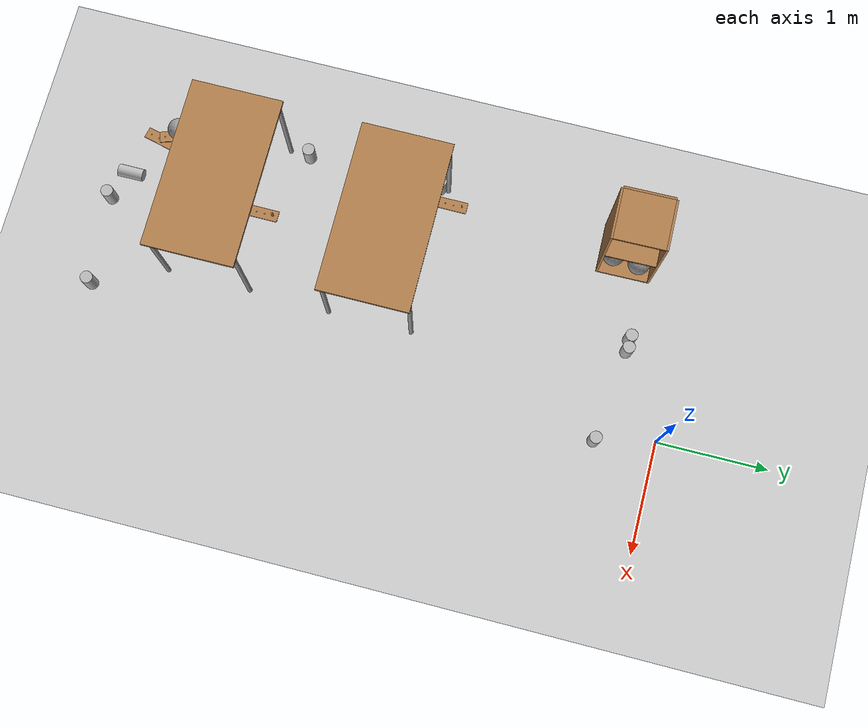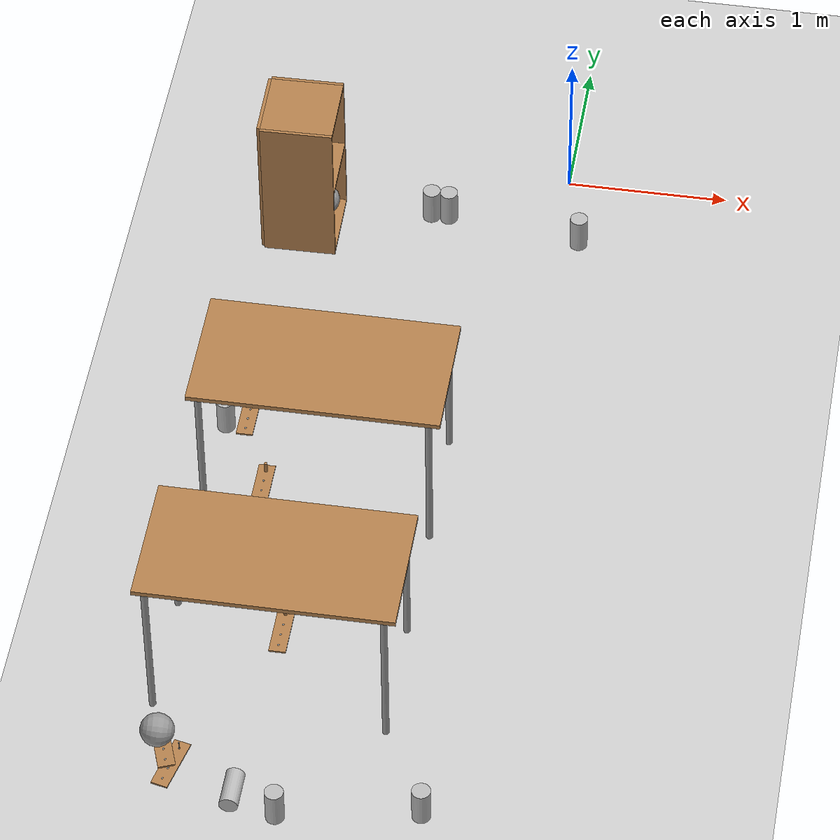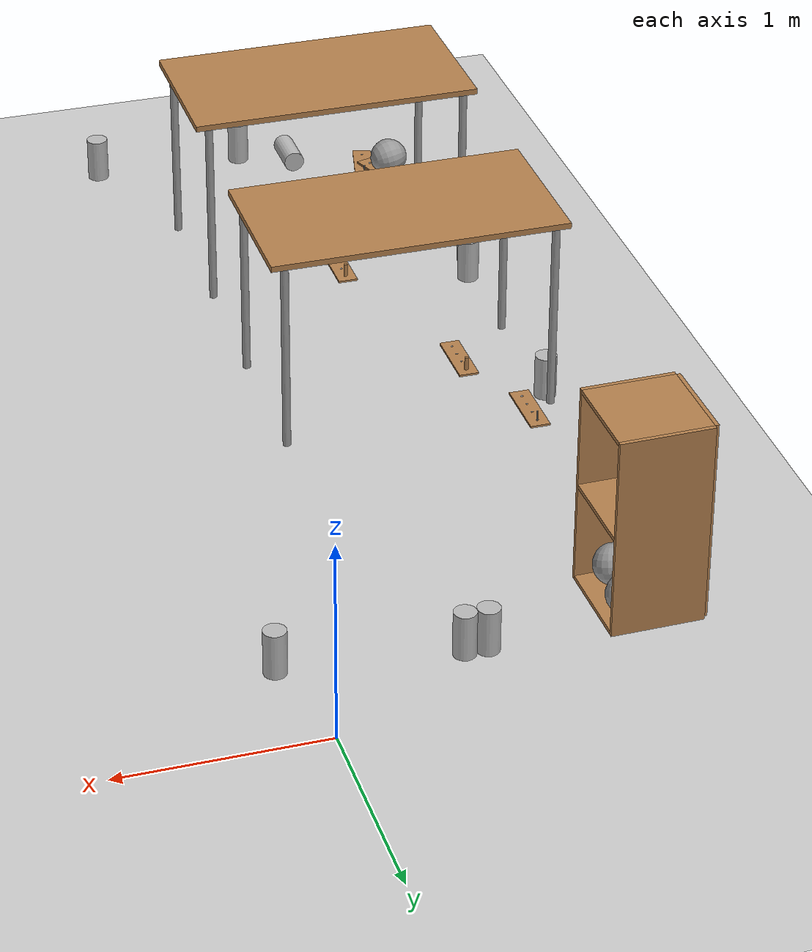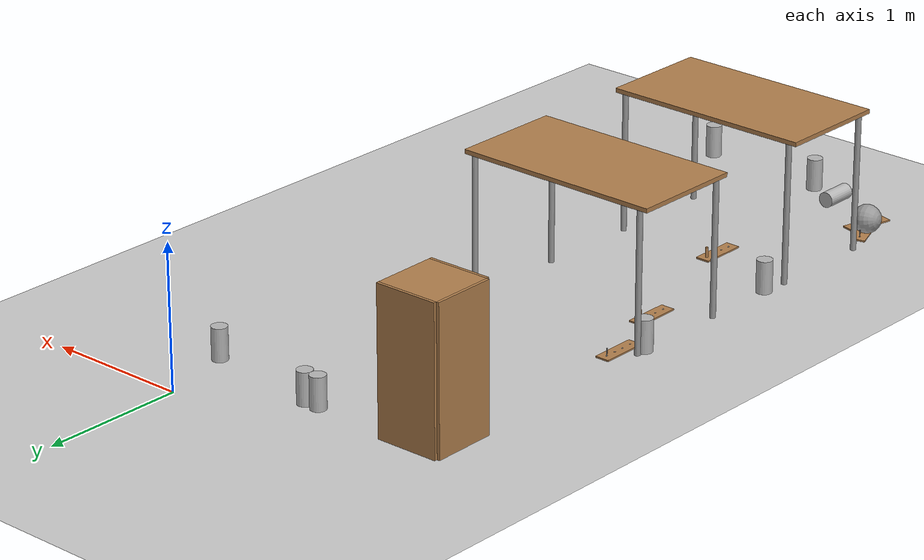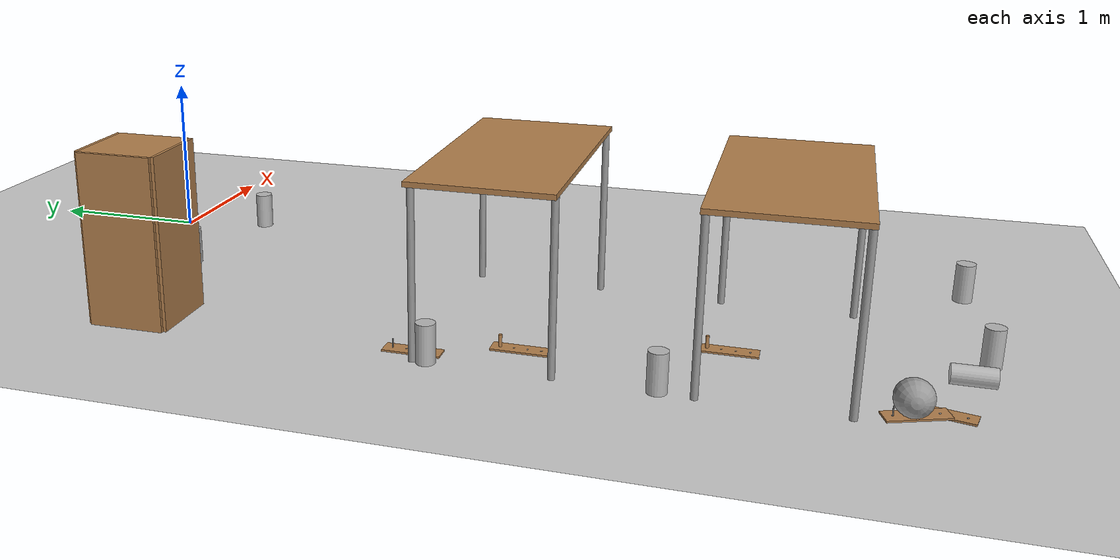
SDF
<sdf version="1.6">
 <world name="default">
  <model name="ground_plane">
   <static>1</static>
   <link name="link">
    <collision name="collision">
     <geometry><plane><normal>0 0 1</normal><size>100 100</size></plane></geometry>
     <surface><friction><ode><mu>100</mu><mu2>50</mu2></ode></friction></surface>
    </collision>
    <visual name="visual">
     <cast_shadows>0</cast_shadows>
     <geometry><plane><normal>0 0 1</normal><size>100 100</size></plane></geometry>
     <material>
      <script><uri>file://media/materials/scripts/gazebo.material</uri><name>Gazebo/Grey</name></script>
     </material>
    </visual>
   </link>
  </model>
  <model name="table">
   <static>1</static>
   <link name="link">
    <collision name="surface">
     <pose>0 0 1 0 -0 0</pose>
     <geometry><box><size>1.5 0.8 0.03</size></box></geometry>
     <surface><friction><ode><mu>0.6</mu><mu2>0.6</mu2></ode></friction></surface>
    </collision>
    <visual name="visual1">
     <pose>0 0 1 0 -0 0</pose>
     <geometry><box><size>1.5 0.8 0.03</size></box></geometry>
     <material>
      <script><uri>file://media/materials/scripts/gazebo.material</uri><name>Gazebo/Wood</name></script>
     </material>
    </visual>
    <collision name="front_left_leg">
     <pose>0.68 0.38 0.5 0 -0 0</pose>
     <geometry><cylinder><radius>0.02</radius><length>1</length></cylinder></geometry>
    </collision>
    <visual name="front_left_leg">
     <pose>0.68 0.38 0.5 0 -0 0</pose>
     <geometry><cylinder><radius>0.02</radius><length>1</length></cylinder></geometry>
     <material>
      <script><uri>file://media/materials/scripts/gazebo.material</uri><name>Gazebo/Grey</name></script>
     </material>
    </visual>
    <collision name="front_right_leg">
     <pose>0.68 -0.38 0.5 0 -0 0</pose>
     <geometry><cylinder><radius>0.02</radius><length>1</length></cylinder></geometry>
    </collision>
    <visual name="front_right_leg">
     <pose>0.68 -0.38 0.5 0 -0 0</pose>
     <geometry><cylinder><radius>0.02</radius><length>1</length></cylinder></geometry>
     <material>
      <script><uri>file://media/materials/scripts/gazebo.material</uri><name>Gazebo/Grey</name></script>
     </material>
    </visual>
    <collision name="back_right_leg">
     <pose>-0.68 -0.38 0.5 0 -0 0</pose>
     <geometry><cylinder><radius>0.02</radius><length>1</length></cylinder></geometry>
    </collision>
    <visual name="back_right_leg">
     <pose>-0.68 -0.38 0.5 0 -0 0</pose>
     <geometry><cylinder><radius>0.02</radius><length>1</length></cylinder></geometry>
     <material>
      <script><uri>file://media/materials/scripts/gazebo.material</uri><name>Gazebo/Grey</name></script>
     </material>
    </visual>
    <collision name="back_left_leg">
     <pose>-0.68 0.38 0.5 0 -0 0</pose>
     <geometry><cylinder><radius>0.02</radius><length>1</length></cylinder></geometry>
    </collision>
    <visual name="back_left_leg">
     <pose>-0.68 0.38 0.5 0 -0 0</pose>
     <geometry><cylinder><radius>0.02</radius><length>1</length></cylinder></geometry>
     <material>
      <script><uri>file://media/materials/scripts/gazebo.material</uri><name>Gazebo/Grey</name></script>
     </material>
    </visual>
   </link>
   <pose>-1.11658 -4.18409 0 0 -0 0</pose>
  </model>
  <model name="table_0">
   <static>1</static>
   <link name="link">
    <collision name="surface">
     <pose>0 0 1 0 -0 0</pose>
     <geometry><box><size>1.5 0.8 0.03</size></box></geometry>
     <surface><friction><ode><mu>0.6</mu><mu2>0.6</mu2></ode></friction></surface>
    </collision>
    <visual name="visual1">
     <pose>0 0 1 0 -0 0</pose>
     <geometry><box><size>1.5 0.8 0.03</size></box></geometry>
     <material>
      <script><uri>file://media/materials/scripts/gazebo.material</uri><name>Gazebo/Wood</name></script>
     </material>
    </visual>
    <collision name="front_left_leg">
     <pose>0.68 0.38 0.5 0 -0 0</pose>
     <geometry><cylinder><radius>0.02</radius><length>1</length></cylinder></geometry>
    </collision>
    <visual name="front_left_leg">
     <pose>0.68 0.38 0.5 0 -0 0</pose>
     <geometry><cylinder><radius>0.02</radius><length>1</length></cylinder></geometry>
     <material>
      <script><uri>file://media/materials/scripts/gazebo.material</uri><name>Gazebo/Grey</name></script>
     </material>
    </visual>
    <collision name="front_right_leg">
     <pose>0.68 -0.38 0.5 0 -0 0</pose>
     <geometry><cylinder><radius>0.02</radius><length>1</length></cylinder></geometry>
    </collision>
    <visual name="front_right_leg">
     <pose>0.68 -0.38 0.5 0 -0 0</pose>
     <geometry><cylinder><radius>0.02</radius><length>1</length></cylinder></geometry>
     <material>
      <script><uri>file://media/materials/scripts/gazebo.material</uri><name>Gazebo/Grey</name></script>
     </material>
    </visual>
    <collision name="back_right_leg">
     <pose>-0.68 -0.38 0.5 0 -0 0</pose>
     <geometry><cylinder><radius>0.02</radius><length>1</length></cylinder></geometry>
    </collision>
    <visual name="back_right_leg">
     <pose>-0.68 -0.38 0.5 0 -0 0</pose>
     <geometry><cylinder><radius>0.02</radius><length>1</length></cylinder></geometry>
     <material>
      <script><uri>file://media/materials/scripts/gazebo.material</uri><name>Gazebo/Grey</name></script>
     </material>
    </visual>
    <collision name="back_left_leg">
     <pose>-0.68 0.38 0.5 0 -0 0</pose>
     <geometry><cylinder><radius>0.02</radius><length>1</length></cylinder></geometry>
    </collision>
    <visual name="back_left_leg">
     <pose>-0.68 0.38 0.5 0 -0 0</pose>
     <geometry><cylinder><radius>0.02</radius><length>1</length></cylinder></geometry>
     <material>
      <script><uri>file://media/materials/scripts/gazebo.material</uri><name>Gazebo/Grey</name></script>
     </material>
    </visual>
   </link>
   <pose>-1.10075 -2.69015 0 0 -0 0</pose>
  </model>
  <model name="cabinet">
   <static>1</static>
   <link name="cabinet_bottom_plate">
    <inertial>
     <pose>0 0 -1 0 -0 0</pose>
     <inertia><ixx>2.05</ixx><ixy>0</ixy><ixz>0</ixz><iyy>2.05</iyy><iyz>0</iyz><izz>2.05</izz></inertia>
     <mass>25</mass>
    </inertial>
    <collision name="cabinet_bottom_plate_geom">
     <pose>0 0 0.01 0 -0 0</pose>
     <geometry><box><size>0.45 0.45 0.02</size></box></geometry>
    </collision>
    <visual name="cabinet_bottom_plate_geom_visual">
     <pose>0 0 0.01 0 -0 0</pose>
     <geometry><box><size>0.45 0.45 0.02</size></box></geometry>
     <material>
      <script><uri>file://media/materials/scripts/gazebo.material</uri><name>Gazebo/Wood</name></script>
     </material>
    </visual>
    <collision name="cabinet_bottom_plate_geom_cabinet_back_plate">
     <pose>0.235 0 0.51 0 -0 0</pose>
     <geometry><box><size>0.02 0.45 1.02</size></box></geometry>
    </collision>
    <visual name="cabinet_bottom_plate_geom_cabinet_back_plate_visual">
     <pose>0.235 0 0.51 0 -0 0</pose>
     <geometry><box><size>0.02 0.45 1.02</size></box></geometry>
     <material>
      <script><uri>file://media/materials/scripts/gazebo.material</uri><name>Gazebo/Wood</name></script>
     </material>
    </visual>
    <collision name="cabinet_bottom_plate_geom_cabinet_left_plate">
     <pose>0 0.235 0.51 0 -0 0</pose>
     <geometry><box><size>0.45 0.02 1.02</size></box></geometry>
    </collision>
    <visual name="cabinet_bottom_plate_geom_cabinet_left_plate_visual">
     <pose>0 0.235 0.51 0 -0 0</pose>
     <geometry><box><size>0.45 0.02 1.02</size></box></geometry>
     <material>
      <script><uri>file://media/materials/scripts/gazebo.material</uri><name>Gazebo/Wood</name></script>
     </material>
    </visual>
    <collision name="cabinet_bottom_plate_geom_cabinet_middle_plate">
     <pose>0 0 0.51 0 -0 0</pose>
     <geometry><box><size>0.45 0.45 0.02</size></box></geometry>
    </collision>
    <visual name="cabinet_bottom_plate_geom_cabinet_middle_plate_visual">
     <pose>0 0 0.51 0 -0 0</pose>
     <geometry><box><size>0.45 0.45 0.02</size></box></geometry>
     <material>
      <script><uri>file://media/materials/scripts/gazebo.material</uri><name>Gazebo/Wood</name></script>
     </material>
    </visual>
    <collision name="cabinet_bottom_plate_geom_cabinet_right_plate">
     <pose>0 -0.235 0.51 0 -0 0</pose>
     <geometry><box><size>0.45 0.02 1.02</size></box></geometry>
    </collision>
    <visual name="cabinet_bottom_plate_geom_cabinet_right_plate_visual">
     <pose>0 -0.235 0.51 0 -0 0</pose>
     <geometry><box><size>0.45 0.02 1.02</size></box></geometry>
     <material>
      <script><uri>file://media/materials/scripts/gazebo.material</uri><name>Gazebo/Wood</name></script>
     </material>
    </visual>
    <collision name="cabinet_bottom_plate_geom_cabinet_top_plate">
     <pose>0 0 1.01 0 -0 0</pose>
     <geometry><box><size>0.45 0.45 0.02</size></box></geometry>
    </collision>
    <visual name="cabinet_bottom_plate_geom_cabinet_top_plate_visual">
     <pose>0 0 1.01 0 -0 0</pose>
     <geometry><box><size>0.45 0.45 0.02</size></box></geometry>
     <material>
      <script><uri>file://media/materials/scripts/gazebo.material</uri><name>Gazebo/Wood</name></script>
     </material>
    </visual>
   </link>
   <pose>-1.60346 -0.606793 0 0 0 -3.12567</pose>
  </model>
  <model name="beer">
   <link name="link">
    <pose>0 0 0.115 0 -0 0</pose>
    <inertial>
     <mass>0.39</mass>
     <inertia><ixx>0.00058</ixx><ixy>0</ixy><ixz>0</ixz><iyy>0.00058</iyy><iyz>0</iyz><izz>0.00019</izz></inertia>
    </inertial>
    <collision name="collision">
     <geometry><cylinder><radius>0.055</radius><length>0.23</length></cylinder></geometry>
    </collision>
    <visual name="visual">
     <geometry><cylinder><radius>0.055</radius><length>0.23</length></cylinder></geometry>
     <material>
      <script>
       <uri>model://beer/materials/scripts</uri>
       <uri>model://beer/materials/textures</uri>
       <name>Beer/Diffuse</name>
      </script>
     </material>
    </visual>
   </link>
   <pose>0.127018 -0.530351 -7e-06 -1e-06 -0 -0.00014</pose>
  </model>
  <model name="beer_0">
   <link name="link">
    <pose>0 0 0.115 0 -0 0</pose>
    <inertial>
     <mass>0.39</mass>
     <inertia><ixx>0.00058</ixx><ixy>0</ixy><ixz>0</ixz><iyy>0.00058</iyy><iyz>0</iyz><izz>0.00019</izz></inertia>
    </inertial>
    <collision name="collision">
     <geometry><cylinder><radius>0.055</radius><length>0.23</length></cylinder></geometry>
    </collision>
    <visual name="visual">
     <geometry><cylinder><radius>0.055</radius><length>0.23</length></cylinder></geometry>
     <material>
      <script>
       <uri>model://beer/materials/scripts</uri>
       <uri>model://beer/materials/textures</uri>
       <name>Beer/Diffuse</name>
      </script>
     </material>
    </visual>
   </link>
   <pose>-0.825052 -0.42424 -2e-06 1e-06 -0 0.056134</pose>
  </model>
  <model name="beer_1">
   <link name="link">
    <pose>0 0 0.115 0 -0 0</pose>
    <inertial>
     <mass>0.39</mass>
     <inertia><ixx>0.00058</ixx><ixy>0</ixy><ixz>0</ixz><iyy>0.00058</iyy><iyz>0</iyz><izz>0.00019</izz></inertia>
    </inertial>
    <collision name="collision">
     <geometry><cylinder><radius>0.055</radius><length>0.23</length></cylinder></geometry>
    </collision>
    <visual name="visual">
     <geometry><cylinder><radius>0.055</radius><length>0.23</length></cylinder></geometry>
     <material>
      <script>
       <uri>model://beer/materials/scripts</uri>
       <uri>model://beer/materials/textures</uri>
       <name>Beer/Diffuse</name>
      </script>
     </material>
    </visual>
   </link>
   <pose>-0.715047 -0.42423 -2e-06 1e-06 -0 0.162904</pose>
  </model>
  <model name="my_ball">
   <link name="link_0">
    <inertial>
     <mass>1</mass>
     <inertia><ixx>0.1</ixx><ixy>0</ixy><ixz>0</ixz><iyy>0.1</iyy><iyz>0</iyz><izz>0.1</izz></inertia>
    </inertial>
    <visual name="visual">
     <geometry><sphere><radius>0.1</radius></sphere></geometry>
     <material>
      <lighting>1</lighting>
      <script><uri>file://media/materials/scripts/gazebo.material</uri><name>Gazebo/Grey</name></script>
      <shader type="pixel"><normal_map>__default__</normal_map></shader>
      <ambient>1 1 1 1</ambient>
      <diffuse>1 1 1 1</diffuse>
      <specular>1 1 1 1</specular>
      <emissive>0 0 0 1</emissive>
     </material>
    </visual>
    <collision name="collision">
     <geometry><sphere><radius>0.1</radius></sphere></geometry>
     <surface>
      <friction>
       <ode><mu>1</mu><mu2>1</mu2><fdir1>0 0 0</fdir1><slip1>0</slip1><slip2>0</slip2></ode>
       <torsional>
        <coefficient>1</coefficient>
        <patch_radius>0</patch_radius>
        <surface_radius>0</surface_radius>
        <use_patch_radius>1</use_patch_radius>
        <ode><slip>0</slip></ode>
       </torsional>
      </friction>
      <bounce><restitution_coefficient>0</restitution_coefficient><threshold>1e+06</threshold></bounce>
      <contact>
       <collide_without_contact>0</collide_without_contact>
       <collide_without_contact_bitmask>1</collide_without_contact_bitmask>
       <collide_bitmask>1</collide_bitmask>
       <ode>
        <soft_cfm>0</soft_cfm>
        <soft_erp>0.2</soft_erp>
        <kp>1e+13</kp>
        <kd>1</kd>
        <max_vel>0.01</max_vel>
        <min_depth>0</min_depth>
       </ode>
       <bullet>
        <split_impulse>1</split_impulse>
        <split_impulse_penetration_threshold>-0.01</split_impulse_penetration_threshold>
        <soft_cfm>0</soft_cfm>
        <soft_erp>0.2</soft_erp>
        <kp>1e+13</kp>
        <kd>1</kd>
       </bullet>
      </contact>
     </surface>
    </collision>
   </link>
   <static>0</static>
   <pose>-1.50345 -0.493286 0.12 0.461158 0.001202 0.001684</pose>
  </model>
  <model name="my_ball_0">
   <link name="link_0">
    <inertial>
     <mass>1</mass>
     <inertia><ixx>0.1</ixx><ixy>0</ixy><ixz>0</ixz><iyy>0.1</iyy><iyz>0</iyz><izz>0.1</izz></inertia>
    </inertial>
    <visual name="visual">
     <geometry><sphere><radius>0.1</radius></sphere></geometry>
     <material>
      <lighting>1</lighting>
      <script><uri>file://media/materials/scripts/gazebo.material</uri><name>Gazebo/Grey</name></script>
      <shader type="pixel"><normal_map>__default__</normal_map></shader>
      <ambient>1 1 1 1</ambient>
      <diffuse>1 1 1 1</diffuse>
      <specular>1 1 1 1</specular>
      <emissive>0 0 0 1</emissive>
     </material>
    </visual>
    <collision name="collision">
     <geometry><sphere><radius>0.1</radius></sphere></geometry>
     <surface>
      <friction>
       <ode><mu>1</mu><mu2>1</mu2><fdir1>0 0 0</fdir1><slip1>0</slip1><slip2>0</slip2></ode>
       <torsional>
        <coefficient>1</coefficient>
        <patch_radius>0</patch_radius>
        <surface_radius>0</surface_radius>
        <use_patch_radius>1</use_patch_radius>
        <ode><slip>0</slip></ode>
       </torsional>
      </friction>
      <bounce><restitution_coefficient>0</restitution_coefficient><threshold>1e+06</threshold></bounce>
      <contact>
       <collide_without_contact>0</collide_without_contact>
       <collide_without_contact_bitmask>1</collide_without_contact_bitmask>
       <collide_bitmask>1</collide_bitmask>
       <ode>
        <soft_cfm>0</soft_cfm>
        <soft_erp>0.2</soft_erp>
        <kp>1e+13</kp>
        <kd>1</kd>
        <max_vel>0.01</max_vel>
        <min_depth>0</min_depth>
       </ode>
       <bullet>
        <split_impulse>1</split_impulse>
        <split_impulse_penetration_threshold>-0.01</split_impulse_penetration_threshold>
        <soft_cfm>0</soft_cfm>
        <soft_erp>0.2</soft_erp>
        <kp>1e+13</kp>
        <kd>1</kd>
       </bullet>
      </contact>
     </surface>
    </collision>
   </link>
   <static>0</static>
   <pose>-1.52826 -0.730598 0.12 0.43637 -0.058735 0.008729</pose>
  </model>
  <model name="beer_2">
   <link name="link">
    <pose>0 0 0.115 0 -0 0</pose>
    <inertial>
     <mass>0.39</mass>
     <inertia><ixx>0.00058</ixx><ixy>0</ixy><ixz>0</ixz><iyy>0.00058</iyy><iyz>0</iyz><izz>0.00019</izz></inertia>
    </inertial>
    <collision name="collision">
     <geometry><cylinder><radius>0.055</radius><length>0.23</length></cylinder></geometry>
    </collision>
    <visual name="visual">
     <geometry><cylinder><radius>0.055</radius><length>0.23</length></cylinder></geometry>
     <material>
      <script>
       <uri>model://beer/materials/scripts</uri>
       <uri>model://beer/materials/textures</uri>
       <name>Beer/Diffuse</name>
      </script>
     </material>
    </visual>
   </link>
   <pose>-1.77787 -2.38531 -8e-06 -7e-06 2e-06 -0.030361</pose>
  </model>
  <model name="metal_peg_board">
   <link name="wooden_board::base">
    <pose>0 0 0.00523 0 -0 0</pose>
    <inertial>
     <mass>0.2765</mass>
     <inertia>
      <ixx>0.0025148</ixx>
      <ixy>0</ixy>
      <ixz>0</ixz>
      <iyy>0.00024037</iyy>
      <iyz>0</iyz>
      <izz>0.00275013</izz>
     </inertia>
    </inertial>
    <collision name="collision">
     <geometry><box><size>0.1016 0.3302 0.01046</size></box></geometry>
     <surface>
      <contact>
       <poissons_ratio>0.347</poissons_ratio>
       <elastic_modulus>8.8e+09</elastic_modulus>
       <ode><kp>100000</kp><kd>100</kd><max_vel>100</max_vel><min_depth>0.001</min_depth></ode>
      </contact>
      <friction>
       <torsional>
        <coefficient>1</coefficient>
        <use_patch_radius>0</use_patch_radius>
        <surface_radius>0.01</surface_radius>
       </torsional>
      </friction>
     </surface>
    </collision>
    <visual name="visual">
     <geometry><box><size>0.1016 0.3302 0.01046</size></box></geometry>
     <material>
      <script><uri>file://media/materials/scripts/gazebo.material</uri><name>Gazebo/Wood</name></script>
     </material>
    </visual>
    <visual name="tee_nut_1">
     <pose>0 -0.116 0 0 -0 0</pose>
     <geometry><cylinder><radius>0.00635</radius><length>0.0105646</length></cylinder></geometry>
     <material>
      <script><uri>file://media/materials/scripts/gazebo.material</uri><name>Gazebo/Grey</name></script>
     </material>
    </visual>
    <visual name="tee_nut_2">
     <pose>0 -0.038 0 0 -0 0</pose>
     <geometry><cylinder><radius>0.00635</radius><length>0.0105646</length></cylinder></geometry>
     <material>
      <script><uri>file://media/materials/scripts/gazebo.material</uri><name>Gazebo/Grey</name></script>
     </material>
    </visual>
    <visual name="tee_nut_3">
     <pose>0 0.038 0 0 -0 0</pose>
     <geometry><cylinder><radius>0.00635</radius><length>0.0105646</length></cylinder></geometry>
     <material>
      <script><uri>file://media/materials/scripts/gazebo.material</uri><name>Gazebo/Grey</name></script>
     </material>
    </visual>
    <visual name="tee_nut_4">
     <pose>0 0.116 0 0 -0 0</pose>
     <geometry><cylinder><radius>0.00635</radius><length>0.0105646</length></cylinder></geometry>
     <material>
      <script><uri>file://media/materials/scripts/gazebo.material</uri><name>Gazebo/Grey</name></script>
     </material>
    </visual>
   </link>
   <link name="peg::link">
    <pose>0 0.116 0.031 0 -0 0</pose>
    <inertial>
     <mass>0.0121</mass>
     <inertia>
      <ixx>3.90898e-06</ixx>
      <ixy>0</ixy>
      <ixz>0</ixz>
      <iyy>3.90898e-06</iyy>
      <iyz>0</iyz>
      <izz>6.58845e-08</izz>
     </inertia>
    </inertial>
    <collision name="collision">
     <geometry><cylinder><radius>0.0033</radius><length>0.062</length></cylinder></geometry>
     <surface>
      <contact>
       <poissons_ratio>0.305</poissons_ratio>
       <elastic_modulus>2e+11</elastic_modulus>
       <ode><kp>100000</kp><kd>100</kd><max_vel>100</max_vel><min_depth>0.001</min_depth></ode>
      </contact>
      <friction>
       <torsional>
        <coefficient>1</coefficient>
        <use_patch_radius>0</use_patch_radius>
        <surface_radius>0.01</surface_radius>
       </torsional>
      </friction>
     </surface>
    </collision>
    <visual name="visual">
     <geometry><cylinder><radius>0.0033</radius><length>0.062</length></cylinder></geometry>
     <material>
      <script><uri>file://media/materials/scripts/gazebo.material</uri><name>Gazebo/Grey</name></script>
     </material>
    </visual>
   </link>
   <joint name="board_peg" type="revolute">
    <parent>wooden_board::base</parent>
    <child>peg::link</child>
    <axis>
     <xyz>0 0 1</xyz>
     <limit><upper>0</upper><lower>0</lower></limit>
     <use_parent_model_frame>0</use_parent_model_frame>
     <dynamics><spring_reference>0</spring_reference><spring_stiffness>0</spring_stiffness></dynamics>
    </axis>
   </joint>
   <pose>-1.65876 -2.27282 -0.001004 1e-05 -0 0</pose>
  </model>
  <model name="wooden_peg_board">
   <link name="wooden_board::base">
    <pose>0 0 0.00523 0 -0 0</pose>
    <inertial>
     <mass>0.2765</mass>
     <inertia>
      <ixx>0.0025148</ixx>
      <ixy>0</ixy>
      <ixz>0</ixz>
      <iyy>0.00024037</iyy>
      <iyz>0</iyz>
      <izz>0.00275013</izz>
     </inertia>
    </inertial>
    <collision name="collision">
     <geometry><box><size>0.1016 0.3302 0.01046</size></box></geometry>
     <surface>
      <contact>
       <poissons_ratio>0.347</poissons_ratio>
       <elastic_modulus>8.8e+09</elastic_modulus>
       <ode><kp>100000</kp><kd>100</kd><max_vel>100</max_vel><min_depth>0.001</min_depth></ode>
      </contact>
      <friction>
       <torsional>
        <coefficient>1</coefficient>
        <use_patch_radius>0</use_patch_radius>
        <surface_radius>0.01</surface_radius>
       </torsional>
      </friction>
     </surface>
    </collision>
    <visual name="visual">
     <geometry><box><size>0.1016 0.3302 0.01046</size></box></geometry>
     <material>
      <script><uri>file://media/materials/scripts/gazebo.material</uri><name>Gazebo/Wood</name></script>
     </material>
    </visual>
    <visual name="tee_nut_1">
     <pose>0 -0.116 0 0 -0 0</pose>
     <geometry><cylinder><radius>0.00635</radius><length>0.0105646</length></cylinder></geometry>
     <material>
      <script><uri>file://media/materials/scripts/gazebo.material</uri><name>Gazebo/Grey</name></script>
     </material>
    </visual>
    <visual name="tee_nut_2">
     <pose>0 -0.038 0 0 -0 0</pose>
     <geometry><cylinder><radius>0.00635</radius><length>0.0105646</length></cylinder></geometry>
     <material>
      <script><uri>file://media/materials/scripts/gazebo.material</uri><name>Gazebo/Grey</name></script>
     </material>
    </visual>
    <visual name="tee_nut_3">
     <pose>0 0.038 0 0 -0 0</pose>
     <geometry><cylinder><radius>0.00635</radius><length>0.0105646</length></cylinder></geometry>
     <material>
      <script><uri>file://media/materials/scripts/gazebo.material</uri><name>Gazebo/Grey</name></script>
     </material>
    </visual>
    <visual name="tee_nut_4">
     <pose>0 0.116 0 0 -0 0</pose>
     <geometry><cylinder><radius>0.00635</radius><length>0.0105646</length></cylinder></geometry>
     <material>
      <script><uri>file://media/materials/scripts/gazebo.material</uri><name>Gazebo/Grey</name></script>
     </material>
    </visual>
   </link>
   <link name="peg::link">
    <pose>0 0.116 0.04 0 -0 0</pose>
    <inertial>
     <mass>0.0175</mass>
     <inertia>
      <ixx>9.74923e-06</ixx>
      <ixy>0</ixy>
      <ixz>0</ixz>
      <iyy>9.74923e-06</iyy>
      <iyz>0</iyz>
      <izz>8.31797e-07</izz>
     </inertia>
    </inertial>
    <collision name="collision">
     <geometry><cylinder><radius>0.00975</radius><length>0.08</length></cylinder></geometry>
     <surface>
      <contact>
       <poissons_ratio>0.347</poissons_ratio>
       <elastic_modulus>8.8e+09</elastic_modulus>
       <ode><kp>100000</kp><kd>100</kd><max_vel>100</max_vel><min_depth>0.001</min_depth></ode>
      </contact>
      <friction>
       <torsional>
        <coefficient>1</coefficient>
        <use_patch_radius>0</use_patch_radius>
        <surface_radius>0.01</surface_radius>
       </torsional>
      </friction>
     </surface>
    </collision>
    <visual name="visual">
     <geometry><cylinder><radius>0.00975</radius><length>0.08</length></cylinder></geometry>
     <material>
      <script><uri>file://media/materials/scripts/gazebo.material</uri><name>Gazebo/Wood</name></script>
     </material>
    </visual>
   </link>
   <joint name="board_peg" type="revolute">
    <parent>wooden_board::base</parent>
    <child>peg::link</child>
    <axis>
     <xyz>0 0 1</xyz>
     <limit><upper>0</upper><lower>0</lower></limit>
     <use_parent_model_frame>0</use_parent_model_frame>
     <dynamics><spring_reference>0</spring_reference><spring_stiffness>0</spring_stiffness></dynamics>
    </axis>
   </joint>
   <pose>-1.47338 -2.83075 -0.001004 1.3e-05 -0 -1e-06</pose>
  </model>
  <model name="beer_3">
   <link name="link">
    <pose>0 0 0.115 0 -0 0</pose>
    <inertial>
     <mass>0.39</mass>
     <inertia><ixx>0.00058</ixx><ixy>0</ixy><ixz>0</ixz><iyy>0.00058</iyy><iyz>0</iyz><izz>0.00019</izz></inertia>
    </inertial>
    <collision name="collision">
     <geometry><cylinder><radius>0.055</radius><length>0.23</length></cylinder></geometry>
    </collision>
    <visual name="visual">
     <geometry><cylinder><radius>0.055</radius><length>0.23</length></cylinder></geometry>
     <material>
      <script>
       <uri>model://beer/materials/scripts</uri>
       <uri>model://beer/materials/textures</uri>
       <name>Beer/Diffuse</name>
      </script>
     </material>
    </visual>
   </link>
   <pose>-1.77652 -3.614 -7e-06 -1e-06 -0 -0.000112</pose>
  </model>
  <model name="wooden_peg_board_0">
   <link name="wooden_board::base">
    <pose>0 0 0.00523 0 -0 0</pose>
    <inertial>
     <mass>0.2765</mass>
     <inertia>
      <ixx>0.0025148</ixx>
      <ixy>0</ixy>
      <ixz>0</ixz>
      <iyy>0.00024037</iyy>
      <iyz>0</iyz>
      <izz>0.00275013</izz>
     </inertia>
    </inertial>
    <collision name="collision">
     <geometry><box><size>0.1016 0.3302 0.01046</size></box></geometry>
     <surface>
      <contact>
       <poissons_ratio>0.347</poissons_ratio>
       <elastic_modulus>8.8e+09</elastic_modulus>
       <ode><kp>100000</kp><kd>100</kd><max_vel>100</max_vel><min_depth>0.001</min_depth></ode>
      </contact>
      <friction>
       <torsional>
        <coefficient>1</coefficient>
        <use_patch_radius>0</use_patch_radius>
        <surface_radius>0.01</surface_radius>
       </torsional>
      </friction>
     </surface>
    </collision>
    <visual name="visual">
     <geometry><box><size>0.1016 0.3302 0.01046</size></box></geometry>
     <material>
      <script><uri>file://media/materials/scripts/gazebo.material</uri><name>Gazebo/Wood</name></script>
     </material>
    </visual>
    <visual name="tee_nut_1">
     <pose>0 -0.116 0 0 -0 0</pose>
     <geometry><cylinder><radius>0.00635</radius><length>0.0105646</length></cylinder></geometry>
     <material>
      <script><uri>file://media/materials/scripts/gazebo.material</uri><name>Gazebo/Grey</name></script>
     </material>
    </visual>
    <visual name="tee_nut_2">
     <pose>0 -0.038 0 0 -0 0</pose>
     <geometry><cylinder><radius>0.00635</radius><length>0.0105646</length></cylinder></geometry>
     <material>
      <script><uri>file://media/materials/scripts/gazebo.material</uri><name>Gazebo/Grey</name></script>
     </material>
    </visual>
    <visual name="tee_nut_3">
     <pose>0 0.038 0 0 -0 0</pose>
     <geometry><cylinder><radius>0.00635</radius><length>0.0105646</length></cylinder></geometry>
     <material>
      <script><uri>file://media/materials/scripts/gazebo.material</uri><name>Gazebo/Grey</name></script>
     </material>
    </visual>
    <visual name="tee_nut_4">
     <pose>0 0.116 0 0 -0 0</pose>
     <geometry><cylinder><radius>0.00635</radius><length>0.0105646</length></cylinder></geometry>
     <material>
      <script><uri>file://media/materials/scripts/gazebo.material</uri><name>Gazebo/Grey</name></script>
     </material>
    </visual>
   </link>
   <link name="peg::link">
    <pose>0 0.116 0.04 0 -0 0</pose>
    <inertial>
     <mass>0.0175</mass>
     <inertia>
      <ixx>9.74923e-06</ixx>
      <ixy>0</ixy>
      <ixz>0</ixz>
      <iyy>9.74923e-06</iyy>
      <iyz>0</iyz>
      <izz>8.31797e-07</izz>
     </inertia>
    </inertial>
    <collision name="collision">
     <geometry><cylinder><radius>0.00975</radius><length>0.08</length></cylinder></geometry>
     <surface>
      <contact>
       <poissons_ratio>0.347</poissons_ratio>
       <elastic_modulus>8.8e+09</elastic_modulus>
       <ode><kp>100000</kp><kd>100</kd><max_vel>100</max_vel><min_depth>0.001</min_depth></ode>
      </contact>
      <friction>
       <torsional>
        <coefficient>1</coefficient>
        <use_patch_radius>0</use_patch_radius>
        <surface_radius>0.01</surface_radius>
       </torsional>
      </friction>
     </surface>
    </collision>
    <visual name="visual">
     <geometry><cylinder><radius>0.00975</radius><length>0.08</length></cylinder></geometry>
     <material>
      <script><uri>file://media/materials/scripts/gazebo.material</uri><name>Gazebo/Wood</name></script>
     </material>
    </visual>
   </link>
   <joint name="board_peg" type="revolute">
    <parent>wooden_board::base</parent>
    <child>peg::link</child>
    <axis>
     <xyz>0 0 1</xyz>
     <limit><upper>0</upper><lower>0</lower></limit>
     <use_parent_model_frame>0</use_parent_model_frame>
     <dynamics><spring_reference>0</spring_reference><spring_stiffness>0</spring_stiffness></dynamics>
    </axis>
   </joint>
   <pose>-1.15736 -3.91513 -0.001005 1.8e-05 -9e-06 5.1e-05</pose>
  </model>
  <model name="beer_4">
   <link name="link">
    <pose>0 0 0.115 0 -0 0</pose>
    <inertial>
     <mass>0.39</mass>
     <inertia><ixx>0.00058</ixx><ixy>0</ixy><ixz>0</ixz><iyy>0.00058</iyy><iyz>0</iyz><izz>0.00019</izz></inertia>
    </inertial>
    <collision name="collision">
     <geometry><cylinder><radius>0.055</radius><length>0.23</length></cylinder></geometry>
    </collision>
    <visual name="visual">
     <geometry><cylinder><radius>0.055</radius><length>0.23</length></cylinder></geometry>
     <material>
      <script>
       <uri>model://beer/materials/scripts</uri>
       <uri>model://beer/materials/textures</uri>
       <name>Beer/Diffuse</name>
      </script>
     </material>
    </visual>
   </link>
   <pose>-1.2205 -5.03148 0.055 -1.57116 0.2619 3.1415</pose>
  </model>
  <model name="beer_5">
   <link name="link">
    <pose>0 0 0.115 0 -0 0</pose>
    <inertial>
     <mass>0.39</mass>
     <inertia><ixx>0.00058</ixx><ixy>0</ixy><ixz>0</ixz><iyy>0.00058</iyy><iyz>0</iyz><izz>0.00019</izz></inertia>
    </inertial>
    <collision name="collision">
     <geometry><cylinder><radius>0.055</radius><length>0.23</length></cylinder></geometry>
    </collision>
    <visual name="visual">
     <geometry><cylinder><radius>0.055</radius><length>0.23</length></cylinder></geometry>
     <material>
      <script>
       <uri>model://beer/materials/scripts</uri>
       <uri>model://beer/materials/textures</uri>
       <name>Beer/Diffuse</name>
      </script>
     </material>
    </visual>
   </link>
   <pose>-0.955251 -5.25699 -7e-06 0 -1e-06 -1.79864</pose>
  </model>
  <model name="metal_peg_board_0">
   <link name="wooden_board::base">
    <pose>0 0 0.00523 0 -0 0</pose>
    <inertial>
     <mass>0.2765</mass>
     <inertia>
      <ixx>0.0025148</ixx>
      <ixy>0</ixy>
      <ixz>0</ixz>
      <iyy>0.00024037</iyy>
      <iyz>0</iyz>
      <izz>0.00275013</izz>
     </inertia>
    </inertial>
    <collision name="collision">
     <geometry><box><size>0.1016 0.3302 0.01046</size></box></geometry>
     <surface>
      <contact>
       <poissons_ratio>0.347</poissons_ratio>
       <elastic_modulus>8.8e+09</elastic_modulus>
       <ode><kp>100000</kp><kd>100</kd><max_vel>100</max_vel><min_depth>0.001</min_depth></ode>
      </contact>
      <friction>
       <torsional>
        <coefficient>1</coefficient>
        <use_patch_radius>0</use_patch_radius>
        <surface_radius>0.01</surface_radius>
       </torsional>
      </friction>
     </surface>
    </collision>
    <visual name="visual">
     <geometry><box><size>0.1016 0.3302 0.01046</size></box></geometry>
     <material>
      <script><uri>file://media/materials/scripts/gazebo.material</uri><name>Gazebo/Wood</name></script>
     </material>
    </visual>
    <visual name="tee_nut_1">
     <pose>0 -0.116 0 0 -0 0</pose>
     <geometry><cylinder><radius>0.00635</radius><length>0.0105646</length></cylinder></geometry>
     <material>
      <script><uri>file://media/materials/scripts/gazebo.material</uri><name>Gazebo/Grey</name></script>
     </material>
    </visual>
    <visual name="tee_nut_2">
     <pose>0 -0.038 0 0 -0 0</pose>
     <geometry><cylinder><radius>0.00635</radius><length>0.0105646</length></cylinder></geometry>
     <material>
      <script><uri>file://media/materials/scripts/gazebo.material</uri><name>Gazebo/Grey</name></script>
     </material>
    </visual>
    <visual name="tee_nut_3">
     <pose>0 0.038 0 0 -0 0</pose>
     <geometry><cylinder><radius>0.00635</radius><length>0.0105646</length></cylinder></geometry>
     <material>
      <script><uri>file://media/materials/scripts/gazebo.material</uri><name>Gazebo/Grey</name></script>
     </material>
    </visual>
    <visual name="tee_nut_4">
     <pose>0 0.116 0 0 -0 0</pose>
     <geometry><cylinder><radius>0.00635</radius><length>0.0105646</length></cylinder></geometry>
     <material>
      <script><uri>file://media/materials/scripts/gazebo.material</uri><name>Gazebo/Grey</name></script>
     </material>
    </visual>
   </link>
   <link name="peg::link">
    <pose>0 0.116 0.031 0 -0 0</pose>
    <inertial>
     <mass>0.0121</mass>
     <inertia>
      <ixx>3.90898e-06</ixx>
      <ixy>0</ixy>
      <ixz>0</ixz>
      <iyy>3.90898e-06</iyy>
      <iyz>0</iyz>
      <izz>6.58845e-08</izz>
     </inertia>
    </inertial>
    <collision name="collision">
     <geometry><cylinder><radius>0.0033</radius><length>0.062</length></cylinder></geometry>
     <surface>
      <contact>
       <poissons_ratio>0.305</poissons_ratio>
       <elastic_modulus>2e+11</elastic_modulus>
       <ode><kp>100000</kp><kd>100</kd><max_vel>100</max_vel><min_depth>0.001</min_depth></ode>
      </contact>
      <friction>
       <torsional>
        <coefficient>1</coefficient>
        <use_patch_radius>0</use_patch_radius>
        <surface_radius>0.01</surface_radius>
       </torsional>
      </friction>
     </surface>
    </collision>
    <visual name="visual">
     <geometry><cylinder><radius>0.0033</radius><length>0.062</length></cylinder></geometry>
     <material>
      <script><uri>file://media/materials/scripts/gazebo.material</uri><name>Gazebo/Grey</name></script>
     </material>
    </visual>
   </link>
   <joint name="board_peg" type="revolute">
    <parent>wooden_board::base</parent>
    <child>peg::link</child>
    <axis>
     <xyz>0 0 1</xyz>
     <limit><upper>0</upper><lower>0</lower></limit>
     <use_parent_model_frame>0</use_parent_model_frame>
     <dynamics><spring_reference>0</spring_reference><spring_stiffness>0</spring_stiffness></dynamics>
    </axis>
   </joint>
   <pose>-1.67977 -4.85429 0.005874 -0.028409 -0.043987 0.343054</pose>
  </model>
  <model name="metal_peg_board_1">
   <link name="wooden_board::base">
    <pose>0 0 0.00523 0 -0 0</pose>
    <inertial>
     <mass>0.2765</mass>
     <inertia>
      <ixx>0.0025148</ixx>
      <ixy>0</ixy>
      <ixz>0</ixz>
      <iyy>0.00024037</iyy>
      <iyz>0</iyz>
      <izz>0.00275013</izz>
     </inertia>
    </inertial>
    <collision name="collision">
     <geometry><box><size>0.1016 0.3302 0.01046</size></box></geometry>
     <surface>
      <contact>
       <poissons_ratio>0.347</poissons_ratio>
       <elastic_modulus>8.8e+09</elastic_modulus>
       <ode><kp>100000</kp><kd>100</kd><max_vel>100</max_vel><min_depth>0.001</min_depth></ode>
      </contact>
      <friction>
       <torsional>
        <coefficient>1</coefficient>
        <use_patch_radius>0</use_patch_radius>
        <surface_radius>0.01</surface_radius>
       </torsional>
      </friction>
     </surface>
    </collision>
    <visual name="visual">
     <geometry><box><size>0.1016 0.3302 0.01046</size></box></geometry>
     <material>
      <script><uri>file://media/materials/scripts/gazebo.material</uri><name>Gazebo/Wood</name></script>
     </material>
    </visual>
    <visual name="tee_nut_1">
     <pose>0 -0.116 0 0 -0 0</pose>
     <geometry><cylinder><radius>0.00635</radius><length>0.0105646</length></cylinder></geometry>
     <material>
      <script><uri>file://media/materials/scripts/gazebo.material</uri><name>Gazebo/Grey</name></script>
     </material>
    </visual>
    <visual name="tee_nut_2">
     <pose>0 -0.038 0 0 -0 0</pose>
     <geometry><cylinder><radius>0.00635</radius><length>0.0105646</length></cylinder></geometry>
     <material>
      <script><uri>file://media/materials/scripts/gazebo.material</uri><name>Gazebo/Grey</name></script>
     </material>
    </visual>
    <visual name="tee_nut_3">
     <pose>0 0.038 0 0 -0 0</pose>
     <geometry><cylinder><radius>0.00635</radius><length>0.0105646</length></cylinder></geometry>
     <material>
      <script><uri>file://media/materials/scripts/gazebo.material</uri><name>Gazebo/Grey</name></script>
     </material>
    </visual>
    <visual name="tee_nut_4">
     <pose>0 0.116 0 0 -0 0</pose>
     <geometry><cylinder><radius>0.00635</radius><length>0.0105646</length></cylinder></geometry>
     <material>
      <script><uri>file://media/materials/scripts/gazebo.material</uri><name>Gazebo/Grey</name></script>
     </material>
    </visual>
   </link>
   <link name="peg::link">
    <pose>0 0.116 0.031 0 -0 0</pose>
    <inertial>
     <mass>0.0121</mass>
     <inertia>
      <ixx>3.90898e-06</ixx>
      <ixy>0</ixy>
      <ixz>0</ixz>
      <iyy>3.90898e-06</iyy>
      <iyz>0</iyz>
      <izz>6.58845e-08</izz>
     </inertia>
    </inertial>
    <collision name="collision">
     <geometry><cylinder><radius>0.0033</radius><length>0.062</length></cylinder></geometry>
     <surface>
      <contact>
       <poissons_ratio>0.305</poissons_ratio>
       <elastic_modulus>2e+11</elastic_modulus>
       <ode><kp>100000</kp><kd>100</kd><max_vel>100</max_vel><min_depth>0.001</min_depth></ode>
      </contact>
      <friction>
       <torsional>
        <coefficient>1</coefficient>
        <use_patch_radius>0</use_patch_radius>
        <surface_radius>0.01</surface_radius>
       </torsional>
      </friction>
     </surface>
    </collision>
    <visual name="visual">
     <geometry><cylinder><radius>0.0033</radius><length>0.062</length></cylinder></geometry>
     <material>
      <script><uri>file://media/materials/scripts/gazebo.material</uri><name>Gazebo/Grey</name></script>
     </material>
    </visual>
   </link>
   <joint name="board_peg" type="revolute">
    <parent>wooden_board::base</parent>
    <child>peg::link</child>
    <axis>
     <xyz>0 0 1</xyz>
     <limit><upper>0</upper><lower>0</lower></limit>
     <use_parent_model_frame>0</use_parent_model_frame>
     <dynamics><spring_reference>0</spring_reference><spring_stiffness>0</spring_stiffness></dynamics>
    </axis>
   </joint>
   <pose>-1.607 -4.97896 -0.001029 0.000102 -1.2e-05 -0.232344</pose>
  </model>
  <model name="my_ball_1">
   <link name="link_0">
    <inertial>
     <mass>1</mass>
     <inertia><ixx>0.1</ixx><ixy>0</ixy><ixz>0</ixz><iyy>0.1</iyy><iyz>0</iyz><izz>0.1</izz></inertia>
    </inertial>
    <visual name="visual">
     <geometry><sphere><radius>0.1</radius></sphere></geometry>
     <material>
      <lighting>1</lighting>
      <script><uri>file://media/materials/scripts/gazebo.material</uri><name>Gazebo/Grey</name></script>
      <shader type="pixel"><normal_map>__default__</normal_map></shader>
      <ambient>1 1 1 1</ambient>
      <diffuse>1 1 1 1</diffuse>
      <specular>1 1 1 1</specular>
      <emissive>0 0 0 1</emissive>
     </material>
    </visual>
    <collision name="collision">
     <geometry><sphere><radius>0.1</radius></sphere></geometry>
     <surface>
      <friction>
       <ode><mu>1</mu><mu2>1</mu2><fdir1>0 0 0</fdir1><slip1>0</slip1><slip2>0</slip2></ode>
       <torsional>
        <coefficient>1</coefficient>
        <patch_radius>0</patch_radius>
        <surface_radius>0</surface_radius>
        <use_patch_radius>1</use_patch_radius>
        <ode><slip>0</slip></ode>
       </torsional>
      </friction>
      <bounce><restitution_coefficient>0</restitution_coefficient><threshold>1e+06</threshold></bounce>
      <contact>
       <collide_without_contact>0</collide_without_contact>
       <collide_without_contact_bitmask>1</collide_without_contact_bitmask>
       <collide_bitmask>1</collide_bitmask>
       <ode>
        <soft_cfm>0</soft_cfm>
        <soft_erp>0.2</soft_erp>
        <kp>1e+13</kp>
        <kd>1</kd>
        <max_vel>0.01</max_vel>
        <min_depth>0</min_depth>
       </ode>
       <bullet>
        <split_impulse>1</split_impulse>
        <split_impulse_penetration_threshold>-0.01</split_impulse_penetration_threshold>
        <soft_cfm>0</soft_cfm>
        <soft_erp>0.2</soft_erp>
        <kp>1e+13</kp>
        <kd>1</kd>
       </bullet>
      </contact>
     </surface>
    </collision>
   </link>
   <static>0</static>
   <pose>-1.71008 -4.83343 0.114592 -1.2689 1.04638 1.93938</pose>
  </model>
  <model name="beer_6">
   <link name="link">
    <pose>0 0 0.115 0 -0 0</pose>
    <inertial>
     <mass>0.39</mass>
     <inertia><ixx>0.00058</ixx><ixy>0</ixy><ixz>0</ixz><iyy>0.00058</iyy><iyz>0</iyz><izz>0.00019</izz></inertia>
    </inertial>
    <collision name="collision">
     <geometry><cylinder><radius>0.055</radius><length>0.23</length></cylinder></geometry>
    </collision>
    <visual name="visual">
     <geometry><cylinder><radius>0.055</radius><length>0.23</length></cylinder></geometry>
     <material>
      <script>
       <uri>model://beer/materials/scripts</uri>
       <uri>model://beer/materials/textures</uri>
       <name>Beer/Diffuse</name>
      </script>
     </material>
    </visual>
   </link>
   <pose>-0.133869 -5.16965 0.060004 7e-06 8e-05 -0.001025</pose>
  </model>
 </world>
</sdf>
